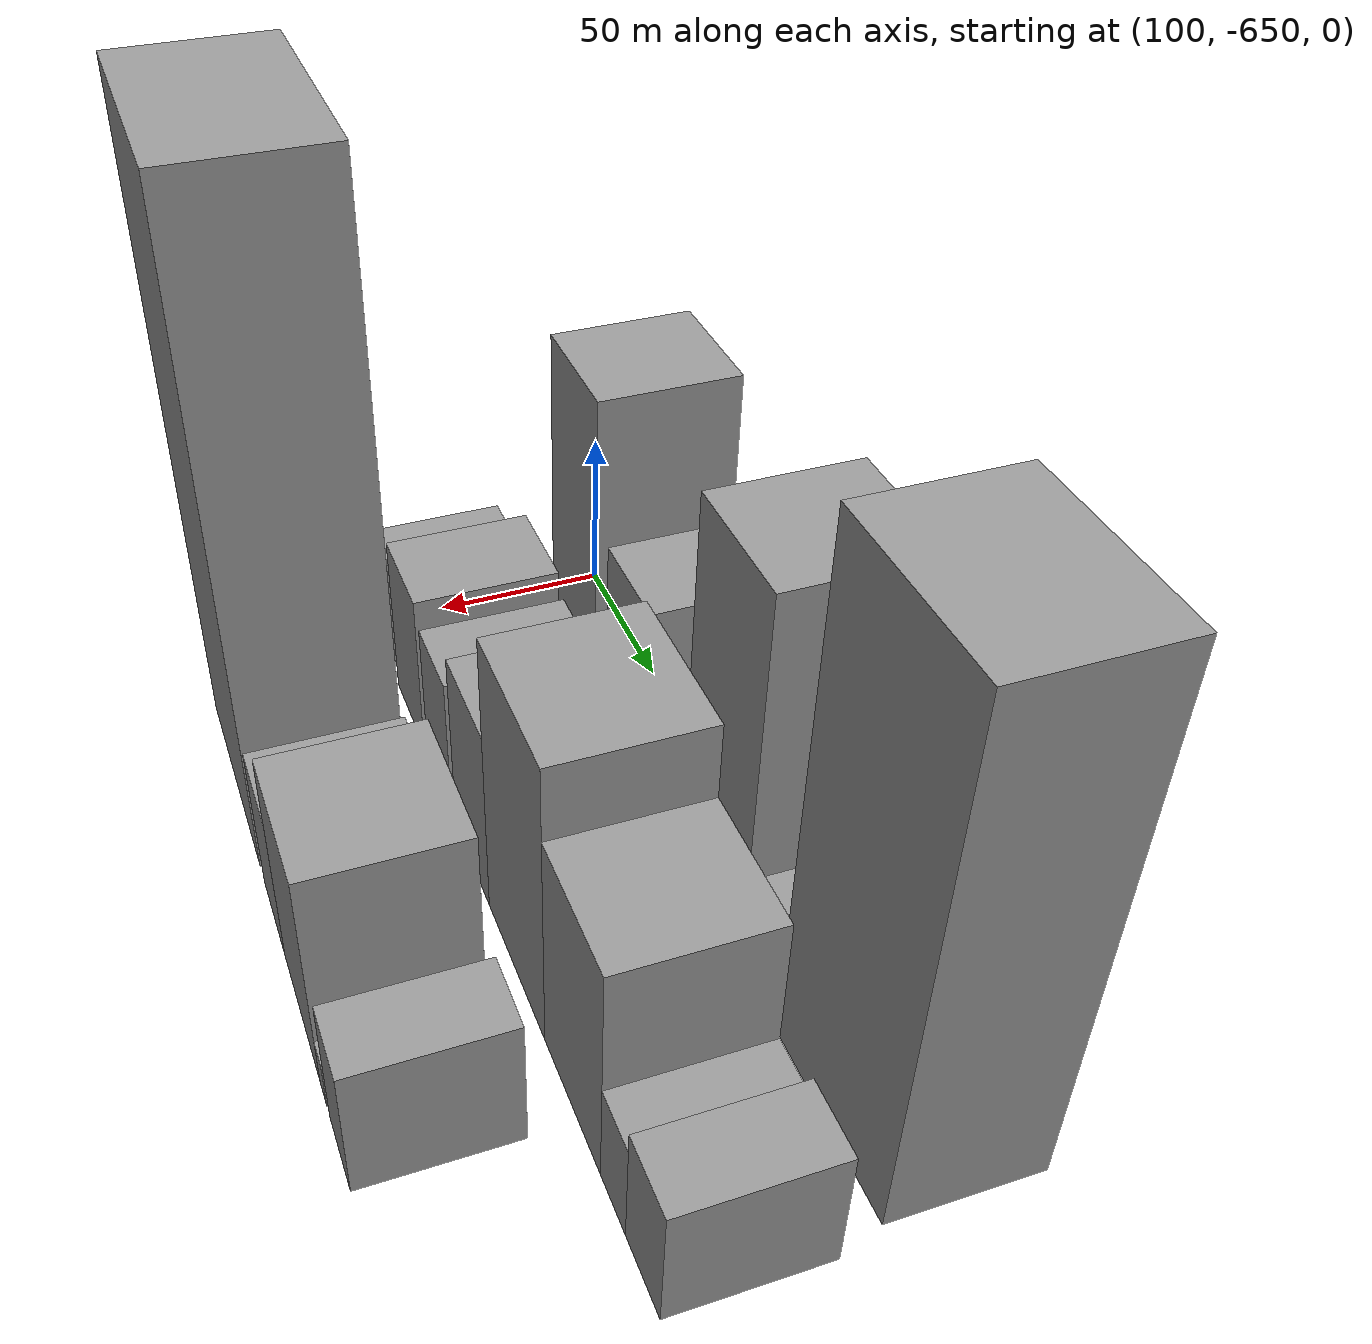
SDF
<sdf version="1.6">
 <world name="default">
  <model name="building_8">
   <static>1</static>
   <pose>100.0000 -613.0949 0 0.000000 0.000000 0.000000</pose>
   <link name="link">
    <pose>0 0 49.50 0 0 0</pose>
    <collision name="collision"><geometry><box><size>40.0000 36.7302 99.0000</size></box></geometry></collision>
    <visual name="visual">
     <cast_shadows>0</cast_shadows>
     <geometry><box><size>40.0000 36.7302 99.0000</size></box></geometry>
     <material>
      <script>
       <uri>model://grey_wall/materials/scripts</uri>
       <uri>model://grey_wall/materials/textures</uri>
       <name>vrc/grey_wall</name>
      </script>
     </material>
    </visual>
   </link>
  </model>
  <model name="building_9">
   <static>1</static>
   <pose>100.0000 -570.5289 0 0.000000 0.000000 0.000000</pose>
   <link name="link">
    <pose>0 0 30.00 0 0 0</pose>
    <collision name="collision"><geometry><box><size>40.0000 30.4017 60.0000</size></box></geometry></collision>
    <visual name="visual">
     <cast_shadows>0</cast_shadows>
     <geometry><box><size>40.0000 30.4017 60.0000</size></box></geometry>
     <material>
      <script>
       <uri>model://grey_wall/materials/scripts</uri>
       <uri>model://grey_wall/materials/textures</uri>
       <name>vrc/grey_wall</name>
      </script>
     </material>
    </visual>
   </link>
  </model>
  <model name="building_10">
   <static>1</static>
   <pose>100.0000 -543.8364 0 0.000000 0.000000 0.000000</pose>
   <link name="link">
    <pose>0 0 19.50 0 0 0</pose>
    <collision name="collision"><geometry><box><size>40.0000 22.9834 39.0000</size></box></geometry></collision>
    <visual name="visual">
     <cast_shadows>0</cast_shadows>
     <geometry><box><size>40.0000 22.9834 39.0000</size></box></geometry>
     <material>
      <script>
       <uri>model://grey_wall/materials/scripts</uri>
       <uri>model://grey_wall/materials/textures</uri>
       <name>vrc/grey_wall</name>
      </script>
     </material>
    </visual>
   </link>
  </model>
  <model name="building_11">
   <static>1</static>
   <pose>100.0000 -509.9247 0 0.000000 0.000000 0.000000</pose>
   <link name="link">
    <pose>0 0 57.00 0 0 0</pose>
    <collision name="collision"><geometry><box><size>40.0000 38.8399 114.0000</size></box></geometry></collision>
    <visual name="visual">
     <cast_shadows>0</cast_shadows>
     <geometry><box><size>40.0000 38.8399 114.0000</size></box></geometry>
     <material>
      <script>
       <uri>model://grey_wall/materials/scripts</uri>
       <uri>model://grey_wall/materials/textures</uri>
       <name>vrc/grey_wall</name>
      </script>
     </material>
    </visual>
   </link>
  </model>
  <model name="building_12">
   <static>1</static>
   <pose>100.0000 -482.2226 0 0.000000 0.000000 0.000000</pose>
   <link name="link">
    <pose>0 0 15.00 0 0 0</pose>
    <collision name="collision"><geometry><box><size>40.0000 16.5643 30.0000</size></box></geometry></collision>
    <visual name="visual">
     <cast_shadows>0</cast_shadows>
     <geometry><box><size>40.0000 16.5643 30.0000</size></box></geometry>
     <material>
      <script>
       <uri>model://grey_wall/materials/scripts</uri>
       <uri>model://grey_wall/materials/textures</uri>
       <name>vrc/grey_wall</name>
      </script>
     </material>
    </visual>
   </link>
  </model>
  <model name="building_13">
   <static>1</static>
   <pose>100.0000 -443.1497 0 0.000000 0.000000 0.000000</pose>
   <link name="link">
    <pose>0 0 75.00 0 0 0</pose>
    <collision name="collision"><geometry><box><size>40.0000 53.5817 150.0000</size></box></geometry></collision>
    <visual name="visual">
     <cast_shadows>0</cast_shadows>
     <geometry><box><size>40.0000 53.5817 150.0000</size></box></geometry>
     <material>
      <script>
       <uri>model://grey_wall/materials/scripts</uri>
       <uri>model://grey_wall/materials/textures</uri>
       <name>vrc/grey_wall</name>
      </script>
     </material>
    </visual>
   </link>
  </model>
  <model name="building_56">
   <static>1</static>
   <pose>152.0000 -638.2827 0 0.000000 0.000000 0.000000</pose>
   <link name="link">
    <pose>0 0 18.00 0 0 0</pose>
    <collision name="collision"><geometry><box><size>40.0000 18.0022 36.0000</size></box></geometry></collision>
    <visual name="visual">
     <cast_shadows>0</cast_shadows>
     <geometry><box><size>40.0000 18.0022 36.0000</size></box></geometry>
     <material>
      <script>
       <uri>model://grey_wall/materials/scripts</uri>
       <uri>model://grey_wall/materials/textures</uri>
       <name>vrc/grey_wall</name>
      </script>
     </material>
    </visual>
   </link>
  </model>
  <model name="building_57">
   <static>1</static>
   <pose>152.0000 -605.1365 0 0.000000 0.000000 0.000000</pose>
   <link name="link">
    <pose>0 0 25.50 0 0 0</pose>
    <collision name="collision"><geometry><box><size>40.0000 28.2901 51.0000</size></box></geometry></collision>
    <visual name="visual">
     <cast_shadows>0</cast_shadows>
     <geometry><box><size>40.0000 28.2901 51.0000</size></box></geometry>
     <material>
      <script>
       <uri>model://grey_wall/materials/scripts</uri>
       <uri>model://grey_wall/materials/textures</uri>
       <name>vrc/grey_wall</name>
      </script>
     </material>
    </visual>
   </link>
  </model>
  <model name="building_58">
   <static>1</static>
   <pose>152.0000 -575.1443 0 0.000000 0.000000 0.000000</pose>
   <link name="link">
    <pose>0 0 22.50 0 0 0</pose>
    <collision name="collision"><geometry><box><size>40.0000 23.6943 45.0000</size></box></geometry></collision>
    <visual name="visual">
     <cast_shadows>0</cast_shadows>
     <geometry><box><size>40.0000 23.6943 45.0000</size></box></geometry>
     <material>
      <script>
       <uri>model://grey_wall/materials/scripts</uri>
       <uri>model://grey_wall/materials/textures</uri>
       <name>vrc/grey_wall</name>
      </script>
     </material>
    </visual>
   </link>
  </model>
  <model name="building_59">
   <static>1</static>
   <pose>152.0000 -544.2333 0 0.000000 0.000000 0.000000</pose>
   <link name="link">
    <pose>0 0 28.50 0 0 0</pose>
    <collision name="collision"><geometry><box><size>40.0000 30.1277 57.0000</size></box></geometry></collision>
    <visual name="visual">
     <cast_shadows>0</cast_shadows>
     <geometry><box><size>40.0000 30.1277 57.0000</size></box></geometry>
     <material>
      <script>
       <uri>model://grey_wall/materials/scripts</uri>
       <uri>model://grey_wall/materials/textures</uri>
       <name>vrc/grey_wall</name>
      </script>
     </material>
    </visual>
   </link>
  </model>
  <model name="building_60">
   <static>1</static>
   <pose>152.0000 -507.1727 0 0.000000 0.000000 0.000000</pose>
   <link name="link">
    <pose>0 0 43.50 0 0 0</pose>
    <collision name="collision"><geometry><box><size>40.0000 43.9935 87.0000</size></box></geometry></collision>
    <visual name="visual">
     <cast_shadows>0</cast_shadows>
     <geometry><box><size>40.0000 43.9935 87.0000</size></box></geometry>
     <material>
      <script>
       <uri>model://grey_wall/materials/scripts</uri>
       <uri>model://grey_wall/materials/textures</uri>
       <name>vrc/grey_wall</name>
      </script>
     </material>
    </visual>
   </link>
  </model>
  <model name="building_61">
   <static>1</static>
   <pose>152.0000 -466.2680 0 0.000000 0.000000 0.000000</pose>
   <link name="link">
    <pose>0 0 33.00 0 0 0</pose>
    <collision name="collision"><geometry><box><size>40.0000 37.8158 66.0000</size></box></geometry></collision>
    <visual name="visual">
     <cast_shadows>0</cast_shadows>
     <geometry><box><size>40.0000 37.8158 66.0000</size></box></geometry>
     <material>
      <script>
       <uri>model://grey_wall/materials/scripts</uri>
       <uri>model://grey_wall/materials/textures</uri>
       <name>vrc/grey_wall</name>
      </script>
     </material>
    </visual>
   </link>
  </model>
  <model name="building_62">
   <static>1</static>
   <pose>152.0000 -439.7051 0 0.000000 0.000000 0.000000</pose>
   <link name="link">
    <pose>0 0 15.00 0 0 0</pose>
    <collision name="collision"><geometry><box><size>40.0000 15.3099 30.0000</size></box></geometry></collision>
    <visual name="visual">
     <cast_shadows>0</cast_shadows>
     <geometry><box><size>40.0000 15.3099 30.0000</size></box></geometry>
     <material>
      <script>
       <uri>model://grey_wall/materials/scripts</uri>
       <uri>model://grey_wall/materials/textures</uri>
       <name>vrc/grey_wall</name>
      </script>
     </material>
    </visual>
   </link>
  </model>
  <model name="building_63">
   <static>1</static>
   <pose>152.0000 -422.1635 0 0.000000 0.000000 0.000000</pose>
   <link name="link">
    <pose>0 0 18.00 0 0 0</pose>
    <collision name="collision"><geometry><box><size>40.0000 19.7733 36.0000</size></box></geometry></collision>
    <visual name="visual">
     <cast_shadows>0</cast_shadows>
     <geometry><box><size>40.0000 19.7733 36.0000</size></box></geometry>
     <material>
      <script>
       <uri>model://grey_wall/materials/scripts</uri>
       <uri>model://grey_wall/materials/textures</uri>
       <name>vrc/grey_wall</name>
      </script>
     </material>
    </visual>
   </link>
  </model>
  <model name="building_108">
   <static>1</static>
   <pose>204.0000 -594.1416 0 0.000000 0.000000 0.000000</pose>
   <link name="link">
    <pose>0 0 94.50 0 0 0</pose>
    <collision name="collision"><geometry><box><size>40.0000 65.1478 189.0000</size></box></geometry></collision>
    <visual name="visual">
     <cast_shadows>0</cast_shadows>
     <geometry><box><size>40.0000 65.1478 189.0000</size></box></geometry>
     <material>
      <script>
       <uri>model://grey_wall/materials/scripts</uri>
       <uri>model://grey_wall/materials/textures</uri>
       <name>vrc/grey_wall</name>
      </script>
     </material>
    </visual>
   </link>
  </model>
  <model name="building_109">
   <static>1</static>
   <pose>204.0000 -542.8027 0 0.000000 0.000000 0.000000</pose>
   <link name="link">
    <pose>0 0 22.50 0 0 0</pose>
    <collision name="collision"><geometry><box><size>40.0000 25.5301 45.0000</size></box></geometry></collision>
    <visual name="visual">
     <cast_shadows>0</cast_shadows>
     <geometry><box><size>40.0000 25.5301 45.0000</size></box></geometry>
     <material>
      <script>
       <uri>model://grey_wall/materials/scripts</uri>
       <uri>model://grey_wall/materials/textures</uri>
       <name>vrc/grey_wall</name>
      </script>
     </material>
    </visual>
   </link>
  </model>
  <model name="building_110">
   <static>1</static>
   <pose>204.0000 -510.4452 0 0.000000 0.000000 0.000000</pose>
   <link name="link">
    <pose>0 0 33.00 0 0 0</pose>
    <collision name="collision"><geometry><box><size>40.0000 39.1849 66.0000</size></box></geometry></collision>
    <visual name="visual">
     <cast_shadows>0</cast_shadows>
     <geometry><box><size>40.0000 39.1849 66.0000</size></box></geometry>
     <material>
      <script>
       <uri>model://grey_wall/materials/scripts</uri>
       <uri>model://grey_wall/materials/textures</uri>
       <name>vrc/grey_wall</name>
      </script>
     </material>
    </visual>
   </link>
  </model>
  <model name="building_111">
   <static>1</static>
   <pose>204.0000 -487.4486 0 0.000000 0.000000 0.000000</pose>
   <link name="link">
    <pose>0 0 7.50 0 0 0</pose>
    <collision name="collision"><geometry><box><size>40.0000 6.8083 15.0000</size></box></geometry></collision>
    <visual name="visual">
     <cast_shadows>0</cast_shadows>
     <geometry><box><size>40.0000 6.8083 15.0000</size></box></geometry>
     <material>
      <script>
       <uri>model://grey_wall/materials/scripts</uri>
       <uri>model://grey_wall/materials/textures</uri>
       <name>vrc/grey_wall</name>
      </script>
     </material>
    </visual>
   </link>
  </model>
  <model name="building_112">
   <static>1</static>
   <pose>204.0000 -471.1519 0 0.000000 0.000000 0.000000</pose>
   <link name="link">
    <pose>0 0 19.50 0 0 0</pose>
    <collision name="collision"><geometry><box><size>40.0000 19.7850 39.0000</size></box></geometry></collision>
    <visual name="visual">
     <cast_shadows>0</cast_shadows>
     <geometry><box><size>40.0000 19.7850 39.0000</size></box></geometry>
     <material>
      <script>
       <uri>model://grey_wall/materials/scripts</uri>
       <uri>model://grey_wall/materials/textures</uri>
       <name>vrc/grey_wall</name>
      </script>
     </material>
    </visual>
   </link>
  </model>
 </world>
</sdf>
